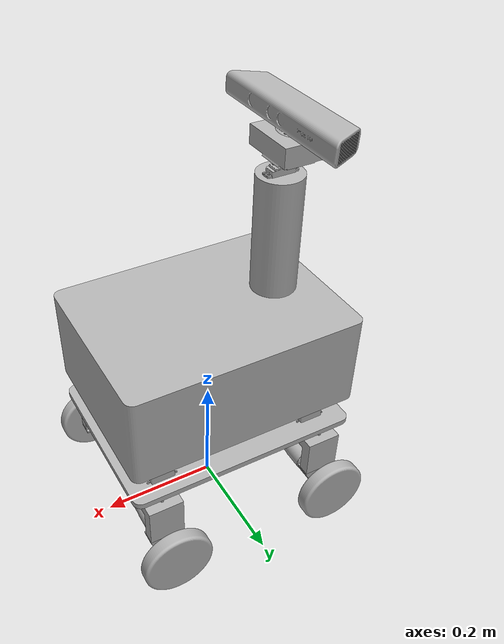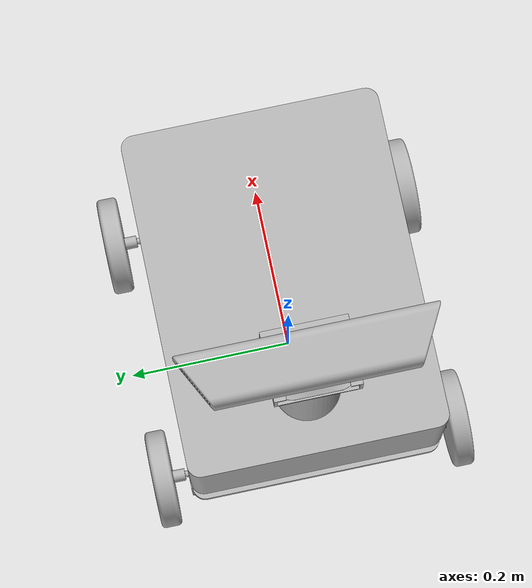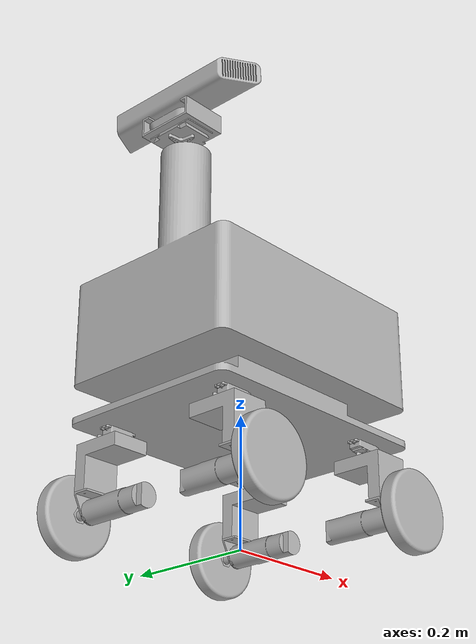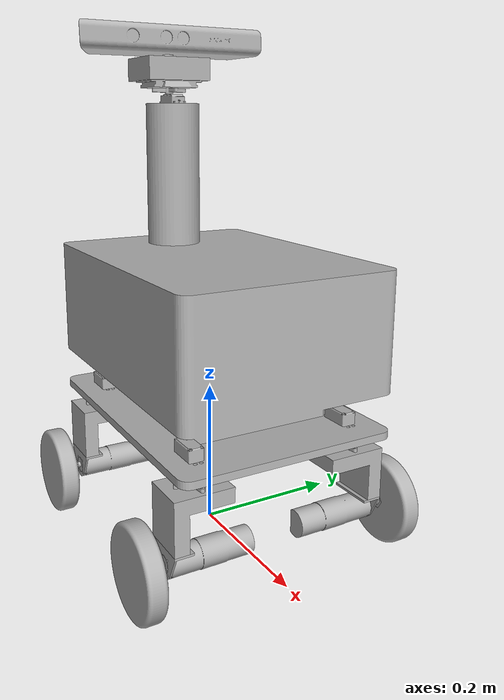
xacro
<?xml version="1.0" ?>
<robot name="ExpInds_v4" xmlns:xacro="http://www.ros.org/wiki/xacro">

<xacro:include filename="$(find ExpInds_v4_description)/urdf/materials.xacro" />
<xacro:include filename="$(find ExpInds_v4_description)/urdf/ExpInds_v4.ros2control" />
<xacro:include filename="$(find ExpInds_v4_description)/urdf/ExpInds_v4.gazebo" />
<link name="base_link">
  <inertial>
    <origin xyz="-0.010331720414375613 0.003793954447212839 0.3064381480885272" rpy="0 0 0"/>
    <mass value="6.04960165037571"/>
    <inertia ixx="0.121686" iyy="0.167889" izz="0.153808" ixy="0.0" iyz="0.0" ixz="0.01906"/>
  </inertial>
  <visual>
    <origin xyz="0 0 0" rpy="0 0 0"/>
    <geometry>
      <mesh filename="file://$(find ExpInds_v4_description)/meshes/base_link.stl" scale="0.001 0.001 0.001"/>
    </geometry>
    <material name="silver"/>
  </visual>
  <collision>
    <origin xyz="0 0 0" rpy="0 0 0"/>
    <geometry>
      <mesh filename="file://$(find ExpInds_v4_description)/meshes/base_link.stl" scale="0.001 0.001 0.001"/>
    </geometry>
  </collision>
</link>

<link name="Servo_v1__1__1">
  <inertial>
    <origin xyz="-0.007398971824638834 -0.012294050102634096 -0.16629507701325189" rpy="0 0 0"/>
    <mass value="0.25233806594972435"/>
    <inertia ixx="4.1e-05" iyy="6.8e-05" izz="4.3e-05" ixy="-0.0" iyz="-0.0" ixz="-1e-06"/>
  </inertial>
  <visual>
    <origin xyz="0.125155 0.095412 -0.342185" rpy="0 0 0"/>
    <geometry>
      <mesh filename="file://$(find ExpInds_v4_description)/meshes/Servo_v1__1__1.stl" scale="0.001 0.001 0.001"/>
    </geometry>
    <material name="silver"/>
  </visual>
  <collision>
    <origin xyz="0.125155 0.095412 -0.342185" rpy="0 0 0"/>
    <geometry>
      <mesh filename="file://$(find ExpInds_v4_description)/meshes/Servo_v1__1__1.stl" scale="0.001 0.001 0.001"/>
    </geometry>
  </collision>
</link>

<link name="Servo_v1__2__1">
  <inertial>
    <origin xyz="-0.007398971824637696 -0.01229405010263486 -0.16629507701325272" rpy="0 0 0"/>
    <mass value="0.25233806594972435"/>
    <inertia ixx="4.1e-05" iyy="6.8e-05" izz="4.3e-05" ixy="-0.0" iyz="-0.0" ixz="-1e-06"/>
  </inertial>
  <visual>
    <origin xyz="0.125155 -0.127588 -0.342185" rpy="0 0 0"/>
    <geometry>
      <mesh filename="file://$(find ExpInds_v4_description)/meshes/Servo_v1__2__1.stl" scale="0.001 0.001 0.001"/>
    </geometry>
    <material name="silver"/>
  </visual>
  <collision>
    <origin xyz="0.125155 -0.127588 -0.342185" rpy="0 0 0"/>
    <geometry>
      <mesh filename="file://$(find ExpInds_v4_description)/meshes/Servo_v1__2__1.stl" scale="0.001 0.001 0.001"/>
    </geometry>
  </collision>
</link>

<link name="Servo_v1__4__1">
  <inertial>
    <origin xyz="-0.006946437023661101 0.004705958997057336 -0.16629507701325189" rpy="0 0 0"/>
    <mass value="0.25233806594972435"/>
    <inertia ixx="4.1e-05" iyy="6.8e-05" izz="4.3e-05" ixy="-0.0" iyz="0.0" ixz="1e-06"/>
  </inertial>
  <visual>
    <origin xyz="-0.153845 0.112412 -0.342185" rpy="0 0 0"/>
    <geometry>
      <mesh filename="file://$(find ExpInds_v4_description)/meshes/Servo_v1__4__1.stl" scale="0.001 0.001 0.001"/>
    </geometry>
    <material name="silver"/>
  </visual>
  <collision>
    <origin xyz="-0.153845 0.112412 -0.342185" rpy="0 0 0"/>
    <geometry>
      <mesh filename="file://$(find ExpInds_v4_description)/meshes/Servo_v1__4__1.stl" scale="0.001 0.001 0.001"/>
    </geometry>
  </collision>
</link>

<link name="Servo_v1__3__1">
  <inertial>
    <origin xyz="-0.006946437023660407 -0.012294041002943762 -0.16629507701325272" rpy="0 0 0"/>
    <mass value="0.25233806594972435"/>
    <inertia ixx="4.1e-05" iyy="6.8e-05" izz="4.3e-05" ixy="-0.0" iyz="0.0" ixz="1e-06"/>
  </inertial>
  <visual>
    <origin xyz="-0.153845 -0.127588 -0.342185" rpy="0 0 0"/>
    <geometry>
      <mesh filename="file://$(find ExpInds_v4_description)/meshes/Servo_v1__3__1.stl" scale="0.001 0.001 0.001"/>
    </geometry>
    <material name="silver"/>
  </visual>
  <collision>
    <origin xyz="-0.153845 -0.127588 -0.342185" rpy="0 0 0"/>
    <geometry>
      <mesh filename="file://$(find ExpInds_v4_description)/meshes/Servo_v1__3__1.stl" scale="0.001 0.001 0.001"/>
    </geometry>
  </collision>
</link>

<link name="DS51_Start_horn_v1_1">
  <inertial>
    <origin xyz="2.9557585096151584e-07 -4.5552898078615733e-08 0.0005602943907738744" rpy="0 0 0"/>
    <mass value="0.027770568475082406"/>
    <inertia ixx="3e-06" iyy="3e-06" izz="6e-06" ixy="-0.0" iyz="-0.0" ixz="0.0"/>
  </inertial>
  <visual>
    <origin xyz="0.143078 -0.115294 -0.149643" rpy="0 0 0"/>
    <geometry>
      <mesh filename="file://$(find ExpInds_v4_description)/meshes/DS51_Start_horn_v1_1.stl" scale="0.001 0.001 0.001"/>
    </geometry>
    <material name="silver"/>
  </visual>
  <collision>
    <origin xyz="0.143078 -0.115294 -0.149643" rpy="0 0 0"/>
    <geometry>
      <mesh filename="file://$(find ExpInds_v4_description)/meshes/DS51_Start_horn_v1_1.stl" scale="0.001 0.001 0.001"/>
    </geometry>
  </collision>
</link>

<link name="DS51_Start_horn_v1__2__1">
  <inertial>
    <origin xyz="2.955758496292482e-07 -4.5552896857370406e-08 0.0005602943907748181" rpy="0 0 0"/>
    <mass value="0.027770568475082406"/>
    <inertia ixx="3e-06" iyy="3e-06" izz="6e-06" ixy="0.0" iyz="-0.0" ixz="0.0"/>
  </inertial>
  <visual>
    <origin xyz="0.143078 0.107706 -0.149643" rpy="0 0 0"/>
    <geometry>
      <mesh filename="file://$(find ExpInds_v4_description)/meshes/DS51_Start_horn_v1__2__1.stl" scale="0.001 0.001 0.001"/>
    </geometry>
    <material name="silver"/>
  </visual>
  <collision>
    <origin xyz="0.143078 0.107706 -0.149643" rpy="0 0 0"/>
    <geometry>
      <mesh filename="file://$(find ExpInds_v4_description)/meshes/DS51_Start_horn_v1__2__1.stl" scale="0.001 0.001 0.001"/>
    </geometry>
  </collision>
</link>

<link name="DS51_Start_horn_v1__4__1">
  <inertial>
    <origin xyz="2.95575849185159e-07 -4.5552898564338307e-08 0.0005602943907749014" rpy="0 0 0"/>
    <mass value="0.027770568475082406"/>
    <inertia ixx="3e-06" iyy="3e-06" izz="6e-06" ixy="0.0" iyz="-0.0" ixz="0.0"/>
  </inertial>
  <visual>
    <origin xyz="-0.157422 0.107706 -0.149643" rpy="0 0 0"/>
    <geometry>
      <mesh filename="file://$(find ExpInds_v4_description)/meshes/DS51_Start_horn_v1__4__1.stl" scale="0.001 0.001 0.001"/>
    </geometry>
    <material name="silver"/>
  </visual>
  <collision>
    <origin xyz="-0.157422 0.107706 -0.149643" rpy="0 0 0"/>
    <geometry>
      <mesh filename="file://$(find ExpInds_v4_description)/meshes/DS51_Start_horn_v1__4__1.stl" scale="0.001 0.001 0.001"/>
    </geometry>
  </collision>
</link>

<link name="DS51_Start_horn_v1__1__1">
  <inertial>
    <origin xyz="2.9557585012884857e-07 -4.555289949415009e-08 0.0005602943907739022" rpy="0 0 0"/>
    <mass value="0.027770568475082406"/>
    <inertia ixx="3e-06" iyy="3e-06" izz="6e-06" ixy="0.0" iyz="-0.0" ixz="0.0"/>
  </inertial>
  <visual>
    <origin xyz="-0.157422 -0.115294 -0.149643" rpy="0 0 0"/>
    <geometry>
      <mesh filename="file://$(find ExpInds_v4_description)/meshes/DS51_Start_horn_v1__1__1.stl" scale="0.001 0.001 0.001"/>
    </geometry>
    <material name="silver"/>
  </visual>
  <collision>
    <origin xyz="-0.157422 -0.115294 -0.149643" rpy="0 0 0"/>
    <geometry>
      <mesh filename="file://$(find ExpInds_v4_description)/meshes/DS51_Start_horn_v1__1__1.stl" scale="0.001 0.001 0.001"/>
    </geometry>
  </collision>
</link>

<link name="WheelsPaddoc_v2_1">
  <inertial>
    <origin xyz="8.231729798507947e-05 0.011538124454263984 -0.023461987819575383" rpy="0 0 0"/>
    <mass value="1.2246"/>
    <inertia ixx="0.001157" iyy="0.000846" izz="0.001046" ixy="-2e-06" iyz="0.000304" ixz="2e-06"/>
  </inertial>
  <visual>
    <origin xyz="0.143078 -0.115294 -0.146643" rpy="0 0 0"/>
    <geometry>
      <mesh filename="file://$(find ExpInds_v4_description)/meshes/WheelsPaddoc_v2_1.stl" scale="0.001 0.001 0.001"/>
    </geometry>
    <material name="silver"/>
  </visual>
  <collision>
    <origin xyz="0.143078 -0.115294 -0.146643" rpy="0 0 0"/>
    <geometry>
      <mesh filename="file://$(find ExpInds_v4_description)/meshes/WheelsPaddoc_v2_1.stl" scale="0.001 0.001 0.001"/>
    </geometry>
  </collision>
</link>

<link name="WheelsPaddoc_v2__1__1">
  <inertial>
    <origin xyz="4.844848834129056e-05 0.011538315508105065 -0.02346198781957548" rpy="0 0 0"/>
    <mass value="1.2246"/>
    <inertia ixx="0.001157" iyy="0.000846" izz="0.001046" ixy="-1e-06" iyz="0.000304" ixz="1e-06"/>
  </inertial>
  <visual>
    <origin xyz="-0.157422 -0.115294 -0.146643" rpy="0 0 0"/>
    <geometry>
      <mesh filename="file://$(find ExpInds_v4_description)/meshes/WheelsPaddoc_v2__1__1.stl" scale="0.001 0.001 0.001"/>
    </geometry>
    <material name="silver"/>
  </visual>
  <collision>
    <origin xyz="-0.157422 -0.115294 -0.146643" rpy="0 0 0"/>
    <geometry>
      <mesh filename="file://$(find ExpInds_v4_description)/meshes/WheelsPaddoc_v2__1__1.stl" scale="0.001 0.001 0.001"/>
    </geometry>
  </collision>
</link>

<link name="WheelsPaddoc_v2__2__1">
  <inertial>
    <origin xyz="2.955758494349592e-07 -0.011538507091250594 -0.023461987819574537" rpy="0 0 0"/>
    <mass value="1.2246"/>
    <inertia ixx="0.001157" iyy="0.000846" izz="0.001046" ixy="0.0" iyz="-0.000304" ixz="-0.0"/>
  </inertial>
  <visual>
    <origin xyz="-0.157422 0.107706 -0.146643" rpy="0 0 0"/>
    <geometry>
      <mesh filename="file://$(find ExpInds_v4_description)/meshes/WheelsPaddoc_v2__2__1.stl" scale="0.001 0.001 0.001"/>
    </geometry>
    <material name="silver"/>
  </visual>
  <collision>
    <origin xyz="-0.157422 0.107706 -0.146643" rpy="0 0 0"/>
    <geometry>
      <mesh filename="file://$(find ExpInds_v4_description)/meshes/WheelsPaddoc_v2__2__1.stl" scale="0.001 0.001 0.001"/>
    </geometry>
  </collision>
</link>

<link name="WheelsPaddoc_v2__3__1">
  <inertial>
    <origin xyz="2.9557584899086997e-07 -0.011538507091248956 -0.023461987819574676" rpy="0 0 0"/>
    <mass value="1.2246"/>
    <inertia ixx="0.001157" iyy="0.000846" izz="0.001046" ixy="-0.0" iyz="-0.000304" ixz="-0.0"/>
  </inertial>
  <visual>
    <origin xyz="0.143078 0.107706 -0.146643" rpy="0 0 0"/>
    <geometry>
      <mesh filename="file://$(find ExpInds_v4_description)/meshes/WheelsPaddoc_v2__3__1.stl" scale="0.001 0.001 0.001"/>
    </geometry>
    <material name="silver"/>
  </visual>
  <collision>
    <origin xyz="0.143078 0.107706 -0.146643" rpy="0 0 0"/>
    <geometry>
      <mesh filename="file://$(find ExpInds_v4_description)/meshes/WheelsPaddoc_v2__3__1.stl" scale="0.001 0.001 0.001"/>
    </geometry>
  </collision>
</link>

<link name="Servo_v1_1">
  <inertial>
    <origin xyz="-0.00022597182463782173 -4.1002940656068715e-08 0.019952178297179435" rpy="0 0 0"/>
    <mass value="0.25233806594972435"/>
    <inertia ixx="4.1e-05" iyy="6.8e-05" izz="4.3e-05" ixy="0.0" iyz="-0.0" ixz="1e-06"/>
  </inertial>
  <visual>
    <origin xyz="0.117828 -0.003794 -0.561493" rpy="0 0 0"/>
    <geometry>
      <mesh filename="file://$(find ExpInds_v4_description)/meshes/Servo_v1_1.stl" scale="0.001 0.001 0.001"/>
    </geometry>
    <material name="silver"/>
  </visual>
  <collision>
    <origin xyz="0.117828 -0.003794 -0.561493" rpy="0 0 0"/>
    <geometry>
      <mesh filename="file://$(find ExpInds_v4_description)/meshes/Servo_v1_1.stl" scale="0.001 0.001 0.001"/>
    </geometry>
  </collision>
</link>

<link name="DS51_Start_horn_v1__3__1">
  <inertial>
    <origin xyz="2.9557585129458275e-07 -4.555267710693728e-08 -0.0005611931068472131" rpy="0 0 0"/>
    <mass value="0.027770568475082406"/>
    <inertia ixx="3e-06" iyy="3e-06" izz="6e-06" ixy="0.0" iyz="-0.0" ixz="0.0"/>
  </inertial>
  <visual>
    <origin xyz="0.128578 -0.003794 -0.607693" rpy="0 0 0"/>
    <geometry>
      <mesh filename="file://$(find ExpInds_v4_description)/meshes/DS51_Start_horn_v1__3__1.stl" scale="0.001 0.001 0.001"/>
    </geometry>
    <material name="silver"/>
  </visual>
  <collision>
    <origin xyz="0.128578 -0.003794 -0.607693" rpy="0 0 0"/>
    <geometry>
      <mesh filename="file://$(find ExpInds_v4_description)/meshes/DS51_Start_horn_v1__3__1.stl" scale="0.001 0.001 0.001"/>
    </geometry>
  </collision>
</link>

<link name="DUDUKAN_PG_36_3MM_v1__2__1">
  <inertial>
    <origin xyz="0.14191183983322328 -0.13457725545307417 -0.1193992282316228" rpy="0 0 0"/>
    <mass value="0.061802777435238064"/>
    <inertia ixx="1.1e-05" iyy="2.3e-05" izz="2.1e-05" ixy="0.0" iyz="3e-06" ixz="0.0"/>
  </inertial>
  <visual>
    <origin xyz="0.284764 -0.281599 -0.188285" rpy="0 0 0"/>
    <geometry>
      <mesh filename="file://$(find ExpInds_v4_description)/meshes/DUDUKAN_PG_36_3MM_v1__2__1.stl" scale="0.001 0.001 0.001"/>
    </geometry>
    <material name="silver"/>
  </visual>
  <collision>
    <origin xyz="0.284764 -0.281599 -0.188285" rpy="0 0 0"/>
    <geometry>
      <mesh filename="file://$(find ExpInds_v4_description)/meshes/DUDUKAN_PG_36_3MM_v1__2__1.stl" scale="0.001 0.001 0.001"/>
    </geometry>
  </collision>
</link>

<link name="DUDUKAN_PG_36_3MM_v1__1__1">
  <inertial>
    <origin xyz="-0.15810329300176082 -0.13290673009106327 -0.11939922823162302" rpy="0 0 0"/>
    <mass value="0.061802777435238064"/>
    <inertia ixx="1.1e-05" iyy="2.3e-05" izz="2.1e-05" ixy="0.0" iyz="3e-06" ixz="0.0"/>
  </inertial>
  <visual>
    <origin xyz="-0.315658 -0.279929 -0.188285" rpy="0 0 0"/>
    <geometry>
      <mesh filename="file://$(find ExpInds_v4_description)/meshes/DUDUKAN_PG_36_3MM_v1__1__1.stl" scale="0.001 0.001 0.001"/>
    </geometry>
    <material name="silver"/>
  </visual>
  <collision>
    <origin xyz="-0.315658 -0.279929 -0.188285" rpy="0 0 0"/>
    <geometry>
      <mesh filename="file://$(find ExpInds_v4_description)/meshes/DUDUKAN_PG_36_3MM_v1__1__1.stl" scale="0.001 0.001 0.001"/>
    </geometry>
  </collision>
</link>

<link name="DUDUKAN_PG_36_3MM_v1__3__1">
  <inertial>
    <origin xyz="-0.14307770442434178 -0.14943463730886303 -0.11939922823162148" rpy="0 0 0"/>
    <mass value="0.061802777435238064"/>
    <inertia ixx="1.1e-05" iyy="2.3e-05" izz="2.1e-05" ixy="-0.0" iyz="-3e-06" ixz="-0.0"/>
  </inertial>
  <visual>
    <origin xyz="-0.0 -0.01 -0.188285" rpy="0 0 0"/>
    <geometry>
      <mesh filename="file://$(find ExpInds_v4_description)/meshes/DUDUKAN_PG_36_3MM_v1__3__1.stl" scale="0.001 0.001 0.001"/>
    </geometry>
    <material name="silver"/>
  </visual>
  <collision>
    <origin xyz="-0.0 -0.01 -0.188285" rpy="0 0 0"/>
    <geometry>
      <mesh filename="file://$(find ExpInds_v4_description)/meshes/DUDUKAN_PG_36_3MM_v1__3__1.stl" scale="0.001 0.001 0.001"/>
    </geometry>
  </collision>
</link>

<link name="DUDUKAN_PG_36_3MM_v1_1">
  <inertial>
    <origin xyz="0.15742229557565907 -0.14943463730886433 -0.11939922823162123" rpy="0 0 0"/>
    <mass value="0.061802777435238064"/>
    <inertia ixx="1.1e-05" iyy="2.3e-05" izz="2.1e-05" ixy="-0.0" iyz="-3e-06" ixz="-0.0"/>
  </inertial>
  <visual>
    <origin xyz="-0.0 -0.01 -0.188285" rpy="0 0 0"/>
    <geometry>
      <mesh filename="file://$(find ExpInds_v4_description)/meshes/DUDUKAN_PG_36_3MM_v1_1.stl" scale="0.001 0.001 0.001"/>
    </geometry>
    <material name="silver"/>
  </visual>
  <collision>
    <origin xyz="-0.0 -0.01 -0.188285" rpy="0 0 0"/>
    <geometry>
      <mesh filename="file://$(find ExpInds_v4_description)/meshes/DUDUKAN_PG_36_3MM_v1_1.stl" scale="0.001 0.001 0.001"/>
    </geometry>
  </collision>
</link>

<link name="PG36_v1_1">
  <inertial>
    <origin xyz="0.00024173129175325547 0.062370808141325965 -4.4935803265172547e-07" rpy="0 0 0"/>
    <mass value="0.10249318991736163"/>
    <inertia ixx="0.000109" iyy="1.8e-05" izz="0.000109" ixy="-1e-06" iyz="0.0" ixz="-0.0"/>
  </inertial>
  <visual>
    <origin xyz="0.143078 0.147706 -0.053643" rpy="0 0 0"/>
    <geometry>
      <mesh filename="file://$(find ExpInds_v4_description)/meshes/PG36_v1_1.stl" scale="0.001 0.001 0.001"/>
    </geometry>
    <material name="silver"/>
  </visual>
  <collision>
    <origin xyz="0.143078 0.147706 -0.053643" rpy="0 0 0"/>
    <geometry>
      <mesh filename="file://$(find ExpInds_v4_description)/meshes/PG36_v1_1.stl" scale="0.001 0.001 0.001"/>
    </geometry>
  </collision>
</link>

<link name="PG36_v1__3__1">
  <inertial>
    <origin xyz="0.00024173129175047992 0.06237080814132441 -4.493580396600083e-07" rpy="0 0 0"/>
    <mass value="0.10249318991736163"/>
    <inertia ixx="0.000109" iyy="1.8e-05" izz="0.000109" ixy="-1e-06" iyz="0.0" ixz="-0.0"/>
  </inertial>
  <visual>
    <origin xyz="-0.157422 0.147706 -0.053643" rpy="0 0 0"/>
    <geometry>
      <mesh filename="file://$(find ExpInds_v4_description)/meshes/PG36_v1__3__1.stl" scale="0.001 0.001 0.001"/>
    </geometry>
    <material name="silver"/>
  </visual>
  <collision>
    <origin xyz="-0.157422 0.147706 -0.053643" rpy="0 0 0"/>
    <geometry>
      <mesh filename="file://$(find ExpInds_v4_description)/meshes/PG36_v1__3__1.stl" scale="0.001 0.001 0.001"/>
    </geometry>
  </collision>
</link>

<link name="PG36_v1__1__1">
  <inertial>
    <origin xyz="-0.00020229912365390956 -0.06237105028135241 -4.493580404510422e-07" rpy="0 0 0"/>
    <mass value="0.10249318991736163"/>
    <inertia ixx="0.000109" iyy="1.8e-05" izz="0.000109" ixy="1e-06" iyz="0.0" ixz="0.0"/>
  </inertial>
  <visual>
    <origin xyz="0.142793 -0.155293 -0.053643" rpy="0 0 0"/>
    <geometry>
      <mesh filename="file://$(find ExpInds_v4_description)/meshes/PG36_v1__1__1.stl" scale="0.001 0.001 0.001"/>
    </geometry>
    <material name="silver"/>
  </visual>
  <collision>
    <origin xyz="0.142793 -0.155293 -0.053643" rpy="0 0 0"/>
    <geometry>
      <mesh filename="file://$(find ExpInds_v4_description)/meshes/PG36_v1__1__1.stl" scale="0.001 0.001 0.001"/>
    </geometry>
  </collision>
</link>

<link name="PG36_v1__2__1">
  <inertial>
    <origin xyz="-1.8630029903793366e-05 -0.062371712012447456 -4.493580400138919e-07" rpy="0 0 0"/>
    <mass value="0.10249318991736163"/>
    <inertia ixx="0.000109" iyy="1.8e-05" izz="0.000109" ixy="1e-06" iyz="0.0" ixz="0.0"/>
  </inertial>
  <visual>
    <origin xyz="-0.157589 -0.155294 -0.053643" rpy="0 0 0"/>
    <geometry>
      <mesh filename="file://$(find ExpInds_v4_description)/meshes/PG36_v1__2__1.stl" scale="0.001 0.001 0.001"/>
    </geometry>
    <material name="silver"/>
  </visual>
  <collision>
    <origin xyz="-0.157589 -0.155294 -0.053643" rpy="0 0 0"/>
    <geometry>
      <mesh filename="file://$(find ExpInds_v4_description)/meshes/PG36_v1__2__1.stl" scale="0.001 0.001 0.001"/>
    </geometry>
  </collision>
</link>

<link name="Holder_Kinect_v1_1">
  <inertial>
    <origin xyz="0.0033450330142472673 -6.435873974291323e-08 0.015285093243177617" rpy="0 0 0"/>
    <mass value="0.6914084942950353"/>
    <inertia ixx="0.000686" iyy="0.0004" izz="0.000867" ixy="0.0" iyz="-0.0" ixz="-3.8e-05"/>
  </inertial>
  <visual>
    <origin xyz="0.128578 -0.003794 -0.610693" rpy="0 0 0"/>
    <geometry>
      <mesh filename="file://$(find ExpInds_v4_description)/meshes/Holder_Kinect_v1_1.stl" scale="0.001 0.001 0.001"/>
    </geometry>
    <material name="silver"/>
  </visual>
  <collision>
    <origin xyz="0.128578 -0.003794 -0.610693" rpy="0 0 0"/>
    <geometry>
      <mesh filename="file://$(find ExpInds_v4_description)/meshes/Holder_Kinect_v1_1.stl" scale="0.001 0.001 0.001"/>
    </geometry>
  </collision>
</link>

<link name="Sense_Kinect_v1_1">
  <inertial>
    <origin xyz="-0.00225009672717294 4.5153725337429475e-05 0.04507363404309761" rpy="0 0 0"/>
    <mass value="5.170546565587239"/>
    <inertia ixx="0.024597" iyy="0.003275" izz="0.024429" ixy="-7e-06" iyz="-3e-06" ixz="2.8e-05"/>
  </inertial>
  <visual>
    <origin xyz="0.129578 -0.003794 -0.623568" rpy="0 0 0"/>
    <geometry>
      <mesh filename="file://$(find ExpInds_v4_description)/meshes/Sense_Kinect_v1_1.stl" scale="0.001 0.001 0.001"/>
    </geometry>
    <material name="silver"/>
  </visual>
  <collision>
    <origin xyz="0.129578 -0.003794 -0.623568" rpy="0 0 0"/>
    <geometry>
      <mesh filename="file://$(find ExpInds_v4_description)/meshes/Sense_Kinect_v1_1.stl" scale="0.001 0.001 0.001"/>
    </geometry>
  </collision>
</link>

<link name="Coupling_12mm_v1_1">
  <inertial>
    <origin xyz="2.9557576503025373e-07 -0.0008311103458201741 -7.478261232694156e-05" rpy="0 0 0"/>
    <mass value="0.04173013484271625"/>
    <inertia ixx="3e-06" iyy="2e-06" izz="3e-06" ixy="0.0" iyz="0.0" ixz="0.0"/>
  </inertial>
  <visual>
    <origin xyz="-0.157422 0.167706 -0.053643" rpy="0 0 0"/>
    <geometry>
      <mesh filename="file://$(find ExpInds_v4_description)/meshes/Coupling_12mm_v1_1.stl" scale="0.001 0.001 0.001"/>
    </geometry>
    <material name="silver"/>
  </visual>
  <collision>
    <origin xyz="-0.157422 0.167706 -0.053643" rpy="0 0 0"/>
    <geometry>
      <mesh filename="file://$(find ExpInds_v4_description)/meshes/Coupling_12mm_v1_1.stl" scale="0.001 0.001 0.001"/>
    </geometry>
  </collision>
</link>

<link name="Coupling_12mm_v1__1__1">
  <inertial>
    <origin xyz="2.9557576786132245e-07 -0.000831110345818814 -7.47826123199194e-05" rpy="0 0 0"/>
    <mass value="0.04173013484271625"/>
    <inertia ixx="3e-06" iyy="2e-06" izz="3e-06" ixy="0.0" iyz="0.0" ixz="0.0"/>
  </inertial>
  <visual>
    <origin xyz="0.143078 0.167706 -0.053643" rpy="0 0 0"/>
    <geometry>
      <mesh filename="file://$(find ExpInds_v4_description)/meshes/Coupling_12mm_v1__1__1.stl" scale="0.001 0.001 0.001"/>
    </geometry>
    <material name="silver"/>
  </visual>
  <collision>
    <origin xyz="0.143078 0.167706 -0.053643" rpy="0 0 0"/>
    <geometry>
      <mesh filename="file://$(find ExpInds_v4_description)/meshes/Coupling_12mm_v1__1__1.stl" scale="0.001 0.001 0.001"/>
    </geometry>
  </collision>
</link>

<link name="Coupling_12mm_v1__3__1">
  <inertial>
    <origin xyz="3.1589638795348485e-06 0.0008314895199351413 7.388389624724684e-05" rpy="0 0 0"/>
    <mass value="0.04173013484271625"/>
    <inertia ixx="3e-06" iyy="2e-06" izz="3e-06" ixy="-0.0" iyz="0.0" ixz="0.0"/>
  </inertial>
  <visual>
    <origin xyz="-0.157673 -0.175293 -0.053643" rpy="0 0 0"/>
    <geometry>
      <mesh filename="file://$(find ExpInds_v4_description)/meshes/Coupling_12mm_v1__3__1.stl" scale="0.001 0.001 0.001"/>
    </geometry>
    <material name="silver"/>
  </visual>
  <collision>
    <origin xyz="-0.157673 -0.175293 -0.053643" rpy="0 0 0"/>
    <geometry>
      <mesh filename="file://$(find ExpInds_v4_description)/meshes/Coupling_12mm_v1__3__1.stl" scale="0.001 0.001 0.001"/>
    </geometry>
  </collision>
</link>

<link name="Coupling_12mm_v1__2__1">
  <inertial>
    <origin xyz="5.716195879412744e-06 0.0008314822791871956 7.388389624682357e-05" rpy="0 0 0"/>
    <mass value="0.04173013484271625"/>
    <inertia ixx="3e-06" iyy="2e-06" izz="3e-06" ixy="-0.0" iyz="0.0" ixz="0.0"/>
  </inertial>
  <visual>
    <origin xyz="0.142651 -0.175292 -0.053643" rpy="0 0 0"/>
    <geometry>
      <mesh filename="file://$(find ExpInds_v4_description)/meshes/Coupling_12mm_v1__2__1.stl" scale="0.001 0.001 0.001"/>
    </geometry>
    <material name="silver"/>
  </visual>
  <collision>
    <origin xyz="0.142651 -0.175292 -0.053643" rpy="0 0 0"/>
    <geometry>
      <mesh filename="file://$(find ExpInds_v4_description)/meshes/Coupling_12mm_v1__2__1.stl" scale="0.001 0.001 0.001"/>
    </geometry>
  </collision>
</link>

<link name="Rubb_Wheel_v1_1">
  <inertial>
    <origin xyz="2.955758440781331e-07 -0.0026020671246425875 -4.493580426367938e-07" rpy="0 0 0"/>
    <mass value="2.1590032107593466"/>
    <inertia ixx="0.002052" iyy="0.003885" izz="0.002052" ixy="0.0" iyz="-0.0" ixz="-0.0"/>
  </inertial>
  <visual>
    <origin xyz="-0.157422 0.177706 -0.053643" rpy="0 0 0"/>
    <geometry>
      <mesh filename="file://$(find ExpInds_v4_description)/meshes/Rubb_Wheel_v1_1.stl" scale="0.001 0.001 0.001"/>
    </geometry>
    <material name="silver"/>
  </visual>
  <collision>
    <origin xyz="-0.157422 0.177706 -0.053643" rpy="0 0 0"/>
    <geometry>
      <mesh filename="file://$(find ExpInds_v4_description)/meshes/Rubb_Wheel_v1_1.stl" scale="0.001 0.001 0.001"/>
    </geometry>
  </collision>
</link>

<link name="Rubb_Wheel_v1__2__1">
  <inertial>
    <origin xyz="2.9557584696471295e-07 -0.0026020671246412275 -4.4935803563544985e-07" rpy="0 0 0"/>
    <mass value="2.1590032107593466"/>
    <inertia ixx="0.002052" iyy="0.003885" izz="0.002052" ixy="-0.0" iyz="-0.0" ixz="-0.0"/>
  </inertial>
  <visual>
    <origin xyz="0.143078 0.177706 -0.053643" rpy="0 0 0"/>
    <geometry>
      <mesh filename="file://$(find ExpInds_v4_description)/meshes/Rubb_Wheel_v1__2__1.stl" scale="0.001 0.001 0.001"/>
    </geometry>
    <material name="silver"/>
  </visual>
  <collision>
    <origin xyz="0.143078 0.177706 -0.053643" rpy="0 0 0"/>
    <geometry>
      <mesh filename="file://$(find ExpInds_v4_description)/meshes/Rubb_Wheel_v1__2__1.stl" scale="0.001 0.001 0.001"/>
    </geometry>
  </collision>
</link>

<link name="Rubb_Wheel_v1__1__1">
  <inertial>
    <origin xyz="1.1282137773155343e-05 0.0026023437966092022 -4.493580370509842e-07" rpy="0 0 0"/>
    <mass value="2.1590032107593466"/>
    <inertia ixx="0.002052" iyy="0.003885" izz="0.002052" ixy="8e-06" iyz="-0.0" ixz="0.0"/>
  </inertial>
  <visual>
    <origin xyz="-0.157714 -0.185293 -0.053643" rpy="0 0 0"/>
    <geometry>
      <mesh filename="file://$(find ExpInds_v4_description)/meshes/Rubb_Wheel_v1__1__1.stl" scale="0.001 0.001 0.001"/>
    </geometry>
    <material name="silver"/>
  </visual>
  <collision>
    <origin xyz="-0.157714 -0.185293 -0.053643" rpy="0 0 0"/>
    <geometry>
      <mesh filename="file://$(find ExpInds_v4_description)/meshes/Rubb_Wheel_v1__1__1.stl" scale="0.001 0.001 0.001"/>
    </geometry>
  </collision>
</link>

<link name="Rubb_Wheel_v1__3__1">
  <inertial>
    <origin xyz="1.8390621958741526e-05 0.0026021416523627494 -4.4935803747425673e-07" rpy="0 0 0"/>
    <mass value="2.1590032107593466"/>
    <inertia ixx="0.002052" iyy="0.003885" izz="0.002052" ixy="1.3e-05" iyz="-0.0" ixz="0.0"/>
  </inertial>
  <visual>
    <origin xyz="0.14258 -0.185292 -0.053643" rpy="0 0 0"/>
    <geometry>
      <mesh filename="file://$(find ExpInds_v4_description)/meshes/Rubb_Wheel_v1__3__1.stl" scale="0.001 0.001 0.001"/>
    </geometry>
    <material name="silver"/>
  </visual>
  <collision>
    <origin xyz="0.14258 -0.185292 -0.053643" rpy="0 0 0"/>
    <geometry>
      <mesh filename="file://$(find ExpInds_v4_description)/meshes/Rubb_Wheel_v1__3__1.stl" scale="0.001 0.001 0.001"/>
    </geometry>
  </collision>
</link>

<joint name="Rigid 1" type="fixed">
  <origin xyz="-0.125155 -0.095412 0.342185" rpy="0 0 0"/>
  <parent link="base_link"/>
  <child link="Servo_v1__1__1"/>
</joint>

<joint name="Rigid 2" type="fixed">
  <origin xyz="-0.125155 0.127588 0.342185" rpy="0 0 0"/>
  <parent link="base_link"/>
  <child link="Servo_v1__2__1"/>
</joint>

<joint name="Rigid 3" type="fixed">
  <origin xyz="0.153845 -0.112412 0.342185" rpy="0 0 0"/>
  <parent link="base_link"/>
  <child link="Servo_v1__4__1"/>
</joint>

<joint name="Rigid 4" type="fixed">
  <origin xyz="0.153845 0.127588 0.342185" rpy="0 0 0"/>
  <parent link="base_link"/>
  <child link="Servo_v1__3__1"/>
</joint>

<joint name="Rigid 6" type="fixed">
  <origin xyz="-0.017923 -0.012294 -0.192542" rpy="0 0 0"/>
  <parent link="Servo_v1__2__1"/>
  <child link="DS51_Start_horn_v1_1"/>
</joint>

<joint name="Rigid 7" type="fixed">
  <origin xyz="-0.017923 -0.012294 -0.192542" rpy="0 0 0"/>
  <parent link="Servo_v1__1__1"/>
  <child link="DS51_Start_horn_v1__2__1"/>
</joint>

<joint name="Rigid 8" type="fixed">
  <origin xyz="0.003577 0.004706 -0.192542" rpy="0 0 0"/>
  <parent link="Servo_v1__4__1"/>
  <child link="DS51_Start_horn_v1__4__1"/>
</joint>

<joint name="Rigid 9" type="fixed">
  <origin xyz="0.003577 -0.012294 -0.192542" rpy="0 0 0"/>
  <parent link="Servo_v1__3__1"/>
  <child link="DS51_Start_horn_v1__1__1"/>
</joint>

<joint name="Rear_Left_S" type="revolute">
  <origin xyz="0.0 0.0 -0.003" rpy="0 0 0"/>
  <parent link="DS51_Start_horn_v1_1"/>
  <child link="WheelsPaddoc_v2_1"/>
  <axis xyz="-0.0 -0.0 -1.0"/>
  <limit upper="1.570796" lower="-1.570796" effort="100" velocity="100"/>
</joint>

<joint name="Front_Left_S" type="revolute">
  <origin xyz="0.0 0.0 -0.003" rpy="0 0 0"/>
  <parent link="DS51_Start_horn_v1__1__1"/>
  <child link="WheelsPaddoc_v2__1__1"/>
  <axis xyz="-0.0 -0.0 -1.0"/>
  <limit upper="1.570796" lower="-1.570796" effort="100" velocity="100"/>
</joint>

<joint name="Front_Right_S" type="revolute">
  <origin xyz="0.0 0.0 -0.003" rpy="0 0 0"/>
  <parent link="DS51_Start_horn_v1__4__1"/>
  <child link="WheelsPaddoc_v2__2__1"/>
  <axis xyz="-0.0 -0.0 -1.0"/>
  <limit upper="1.570796" lower="-1.570796" effort="100" velocity="100"/>
</joint>

<joint name="Rear_Right_S" type="revolute">
  <origin xyz="0.0 0.0 -0.003" rpy="0 0 0"/>
  <parent link="DS51_Start_horn_v1__2__1"/>
  <child link="WheelsPaddoc_v2__3__1"/>
  <axis xyz="-0.0 -0.0 -1.0"/>
  <limit upper="1.570796" lower="-1.570796" effort="100" velocity="100"/>
</joint>

<joint name="Rigid 14" type="fixed">
  <origin xyz="-0.117828 0.003794 0.561493" rpy="0 0 0"/>
  <parent link="base_link"/>
  <child link="Servo_v1_1"/>
</joint>

<joint name="Rigid 15" type="fixed">
  <origin xyz="-0.01075 0.0 0.0462" rpy="0 0 0"/>
  <parent link="Servo_v1_1"/>
  <child link="DS51_Start_horn_v1__3__1"/>
</joint>

<joint name="Rigid 16" type="fixed">
  <origin xyz="-0.141686 0.166305 0.041642" rpy="0 0 0"/>
  <parent link="WheelsPaddoc_v2_1"/>
  <child link="DUDUKAN_PG_36_3MM_v1__2__1"/>
</joint>

<joint name="Rigid 17" type="fixed">
  <origin xyz="0.158236 0.164635 0.041642" rpy="0 0 0"/>
  <parent link="WheelsPaddoc_v2__1__1"/>
  <child link="DUDUKAN_PG_36_3MM_v1__1__1"/>
</joint>

<joint name="Rigid 18" type="fixed">
  <origin xyz="0.143078 0.117706 0.041642" rpy="0 0 0"/>
  <parent link="WheelsPaddoc_v2__3__1"/>
  <child link="DUDUKAN_PG_36_3MM_v1__3__1"/>
</joint>

<joint name="Rigid 19" type="fixed">
  <origin xyz="-0.157422 0.117706 0.041642" rpy="0 0 0"/>
  <parent link="WheelsPaddoc_v2__2__1"/>
  <child link="DUDUKAN_PG_36_3MM_v1_1"/>
</joint>

<joint name="Rigid 20" type="fixed">
  <origin xyz="-0.143078 -0.157706 -0.134642" rpy="0 0 0"/>
  <parent link="DUDUKAN_PG_36_3MM_v1__3__1"/>
  <child link="PG36_v1_1"/>
</joint>

<joint name="Rigid 21" type="fixed">
  <origin xyz="0.157422 -0.157706 -0.134642" rpy="0 0 0"/>
  <parent link="DUDUKAN_PG_36_3MM_v1_1"/>
  <child link="PG36_v1__3__1"/>
</joint>

<joint name="Rigid 22" type="fixed">
  <origin xyz="0.141971 -0.126306 -0.134642" rpy="0 0 0"/>
  <parent link="DUDUKAN_PG_36_3MM_v1__2__1"/>
  <child link="PG36_v1__1__1"/>
</joint>

<joint name="Rigid 23" type="fixed">
  <origin xyz="-0.158069 -0.124635 -0.134642" rpy="0 0 0"/>
  <parent link="DUDUKAN_PG_36_3MM_v1__1__1"/>
  <child link="PG36_v1__2__1"/>
</joint>

<joint name="Rigid 32" type="fixed">
  <origin xyz="0.0 0.0 0.003" rpy="0 0 0"/>
  <parent link="DS51_Start_horn_v1__3__1"/>
  <child link="Holder_Kinect_v1_1"/>
</joint>

<joint name="Kinect_Rev" type="revolute">
  <origin xyz="-0.001 0.0 0.012875" rpy="0 0 0"/>
  <parent link="Holder_Kinect_v1_1"/>
  <child link="Sense_Kinect_v1_1"/>
  <axis xyz="0.0 0.0 1.0"/>
  <limit upper="1.570796" lower="-1.570796" effort="100" velocity="100"/>
</joint>

<joint name="Front_Right_D" type="continuous">
  <origin xyz="0.0 -0.02 0.0" rpy="0 0 0"/>
  <parent link="PG36_v1__3__1"/>
  <child link="Coupling_12mm_v1_1"/>
  <axis xyz="-0.0 -1.0 0.0"/>
</joint>

<joint name="Rear_Right_D" type="continuous">
  <origin xyz="0.0 -0.02 0.0" rpy="0 0 0"/>
  <parent link="PG36_v1_1"/>
  <child link="Coupling_12mm_v1__1__1"/>
  <axis xyz="-0.0 -1.0 0.0"/>
</joint>

<joint name="Front_Left_D" type="continuous">
  <origin xyz="8.4e-05 0.019999 0.0" rpy="0 0 0"/>
  <parent link="PG36_v1__2__1"/>
  <child link="Coupling_12mm_v1__3__1"/>
  <axis xyz="0.004173 0.999991 -0.0"/>
</joint>

<joint name="Rear_Left_D" type="continuous">
  <origin xyz="0.000142 0.019999 0.0" rpy="0 0 0"/>
  <parent link="PG36_v1__1__1"/>
  <child link="Coupling_12mm_v1__2__1"/>
  <axis xyz="0.007109 0.999975 -0.0"/>
</joint>

<joint name="Rigid 59" type="fixed">
  <origin xyz="0.0 -0.01 0.0" rpy="0 0 0"/>
  <parent link="Coupling_12mm_v1_1"/>
  <child link="Rubb_Wheel_v1_1"/>
</joint>

<joint name="Rigid 60" type="fixed">
  <origin xyz="0.0 -0.01 0.0" rpy="0 0 0"/>
  <parent link="Coupling_12mm_v1__1__1"/>
  <child link="Rubb_Wheel_v1__2__1"/>
</joint>

<joint name="Rigid 61" type="fixed">
  <origin xyz="4.1e-05 0.01 0.0" rpy="0 0 0"/>
  <parent link="Coupling_12mm_v1__3__1"/>
  <child link="Rubb_Wheel_v1__1__1"/>
</joint>

<joint name="Rigid 62" type="fixed">
  <origin xyz="7.1e-05 0.01 0.0" rpy="0 0 0"/>
  <parent link="Coupling_12mm_v1__2__1"/>
  <child link="Rubb_Wheel_v1__3__1"/>
</joint>

</robot>

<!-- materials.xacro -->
<robot name="ExpInds_v4" xmlns:xacro="http://www.ros.org/wiki/xacro" >

<material name="silver">
  <color rgba="0.700 0.700 0.700 1.000"/>
</material>

</robot>

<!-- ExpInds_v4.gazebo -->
<robot name="ExpInds_v4" xmlns:xacro="http://www.ros.org/wiki/xacro" >

<xacro:property name="body_color" value="Gazebo/Silver" />

<gazebo reference="base_link">
  <material>${body_color}</material>
  <mu1>0.2</mu1>
  <mu2>0.2</mu2>
  <self_collide>true</self_collide>
  <gravity>true</gravity>
</gazebo>

<gazebo reference="Servo_v1__1__1">
  <material>${body_color}</material>
  <mu1>0.2</mu1>
  <mu2>0.2</mu2>
  <self_collide>true</self_collide>
</gazebo>

<gazebo reference="Servo_v1__2__1">
  <material>${body_color}</material>
  <mu1>0.2</mu1>
  <mu2>0.2</mu2>
  <self_collide>true</self_collide>
</gazebo>

<gazebo reference="Servo_v1__4__1">
  <material>${body_color}</material>
  <mu1>0.2</mu1>
  <mu2>0.2</mu2>
  <self_collide>true</self_collide>
</gazebo>

<gazebo reference="Servo_v1__3__1">
  <material>${body_color}</material>
  <mu1>0.2</mu1>
  <mu2>0.2</mu2>
  <self_collide>true</self_collide>
</gazebo>

<gazebo reference="DS51_Start_horn_v1_1">
  <material>${body_color}</material>
  <mu1>0.2</mu1>
  <mu2>0.2</mu2>
  <self_collide>true</self_collide>
</gazebo>

<gazebo reference="DS51_Start_horn_v1__2__1">
  <material>${body_color}</material>
  <mu1>0.2</mu1>
  <mu2>0.2</mu2>
  <self_collide>true</self_collide>
</gazebo>

<gazebo reference="DS51_Start_horn_v1__4__1">
  <material>${body_color}</material>
  <mu1>0.2</mu1>
  <mu2>0.2</mu2>
  <self_collide>true</self_collide>
</gazebo>

<gazebo reference="DS51_Start_horn_v1__1__1">
  <material>${body_color}</material>
  <mu1>0.2</mu1>
  <mu2>0.2</mu2>
  <self_collide>true</self_collide>
</gazebo>

<gazebo reference="WheelsPaddoc_v2_1">
  <material>${body_color}</material>
  <mu1>0.2</mu1>
  <mu2>0.2</mu2>
  <self_collide>true</self_collide>
</gazebo>

<gazebo reference="WheelsPaddoc_v2__1__1">
  <material>${body_color}</material>
  <mu1>0.2</mu1>
  <mu2>0.2</mu2>
  <self_collide>true</self_collide>
</gazebo>

<gazebo reference="WheelsPaddoc_v2__2__1">
  <material>${body_color}</material>
  <mu1>0.2</mu1>
  <mu2>0.2</mu2>
  <self_collide>true</self_collide>
</gazebo>

<gazebo reference="WheelsPaddoc_v2__3__1">
  <material>${body_color}</material>
  <mu1>0.2</mu1>
  <mu2>0.2</mu2>
  <self_collide>true</self_collide>
</gazebo>

<gazebo reference="Servo_v1_1">
  <material>${body_color}</material>
  <mu1>0.2</mu1>
  <mu2>0.2</mu2>
  <self_collide>true</self_collide>
</gazebo>

<gazebo reference="DS51_Start_horn_v1__3__1">
  <material>${body_color}</material>
  <mu1>0.2</mu1>
  <mu2>0.2</mu2>
  <self_collide>true</self_collide>
</gazebo>

<gazebo reference="DUDUKAN_PG_36_3MM_v1__2__1">
  <material>${body_color}</material>
  <mu1>0.2</mu1>
  <mu2>0.2</mu2>
  <self_collide>true</self_collide>
</gazebo>

<gazebo reference="DUDUKAN_PG_36_3MM_v1__1__1">
  <material>${body_color}</material>
  <mu1>0.2</mu1>
  <mu2>0.2</mu2>
  <self_collide>true</self_collide>
</gazebo>

<gazebo reference="DUDUKAN_PG_36_3MM_v1__3__1">
  <material>${body_color}</material>
  <mu1>0.2</mu1>
  <mu2>0.2</mu2>
  <self_collide>true</self_collide>
</gazebo>

<gazebo reference="DUDUKAN_PG_36_3MM_v1_1">
  <material>${body_color}</material>
  <mu1>0.2</mu1>
  <mu2>0.2</mu2>
  <self_collide>true</self_collide>
</gazebo>

<gazebo reference="PG36_v1_1">
  <material>${body_color}</material>
  <mu1>0.2</mu1>
  <mu2>0.2</mu2>
  <self_collide>true</self_collide>
</gazebo>

<gazebo reference="PG36_v1__3__1">
  <material>${body_color}</material>
  <mu1>0.2</mu1>
  <mu2>0.2</mu2>
  <self_collide>true</self_collide>
</gazebo>

<gazebo reference="PG36_v1__1__1">
  <material>${body_color}</material>
  <mu1>0.2</mu1>
  <mu2>0.2</mu2>
  <self_collide>true</self_collide>
</gazebo>

<gazebo reference="PG36_v1__2__1">
  <material>${body_color}</material>
  <mu1>0.2</mu1>
  <mu2>0.2</mu2>
  <self_collide>true</self_collide>
</gazebo>

<gazebo reference="Holder_Kinect_v1_1">
  <material>${body_color}</material>
  <mu1>0.2</mu1>
  <mu2>0.2</mu2>
  <self_collide>true</self_collide>
</gazebo>

<gazebo reference="Sense_Kinect_v1_1">
  <material>${body_color}</material>
  <mu1>0.2</mu1>
  <mu2>0.2</mu2>
  <self_collide>true</self_collide>
</gazebo>

<gazebo reference="Coupling_12mm_v1_1">
  <material>${body_color}</material>
  <mu1>0.2</mu1>
  <mu2>0.2</mu2>
  <self_collide>true</self_collide>
</gazebo>

<gazebo reference="Coupling_12mm_v1__1__1">
  <material>${body_color}</material>
  <mu1>0.2</mu1>
  <mu2>0.2</mu2>
  <self_collide>true</self_collide>
</gazebo>

<gazebo reference="Coupling_12mm_v1__3__1">
  <material>${body_color}</material>
  <mu1>0.2</mu1>
  <mu2>0.2</mu2>
  <self_collide>true</self_collide>
</gazebo>

<gazebo reference="Coupling_12mm_v1__2__1">
  <material>${body_color}</material>
  <mu1>0.2</mu1>
  <mu2>0.2</mu2>
  <self_collide>true</self_collide>
</gazebo>

<gazebo reference="Rubb_Wheel_v1_1">
  <material>${body_color}</material>
  <mu1>0.2</mu1>
  <mu2>0.2</mu2>
  <self_collide>true</self_collide>
</gazebo>

<gazebo reference="Rubb_Wheel_v1__2__1">
  <material>${body_color}</material>
  <mu1>0.2</mu1>
  <mu2>0.2</mu2>
  <self_collide>true</self_collide>
</gazebo>

<gazebo reference="Rubb_Wheel_v1__1__1">
  <material>${body_color}</material>
  <mu1>0.2</mu1>
  <mu2>0.2</mu2>
  <self_collide>true</self_collide>
</gazebo>

<gazebo reference="Rubb_Wheel_v1__3__1">
  <material>${body_color}</material>
  <mu1>0.2</mu1>
  <mu2>0.2</mu2>
  <self_collide>true</self_collide>
</gazebo>

</robot>
